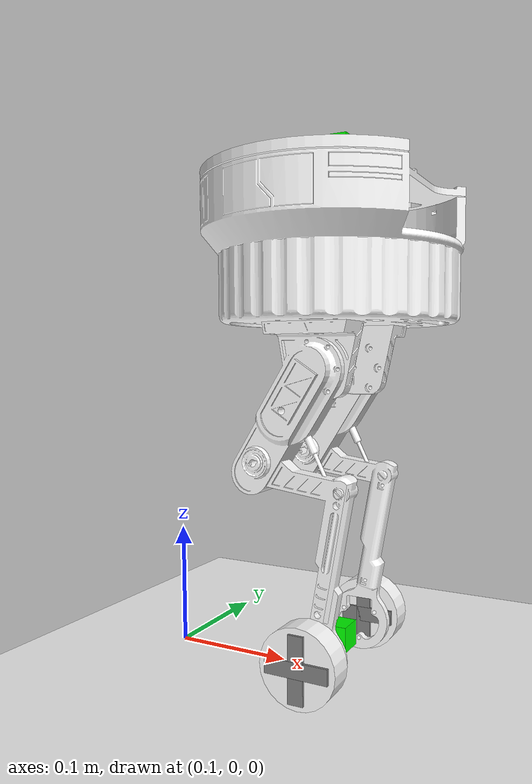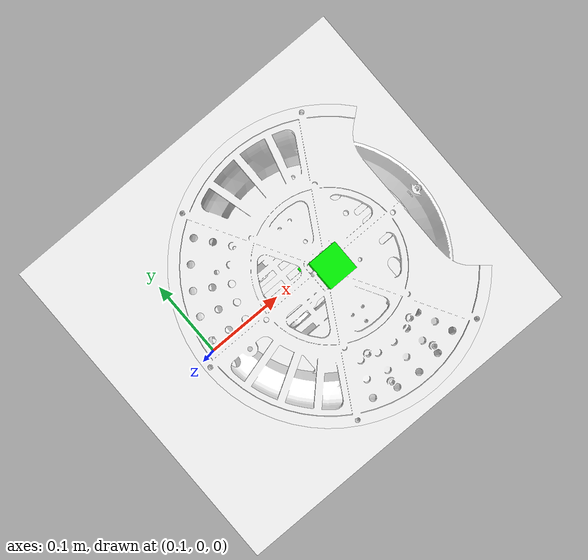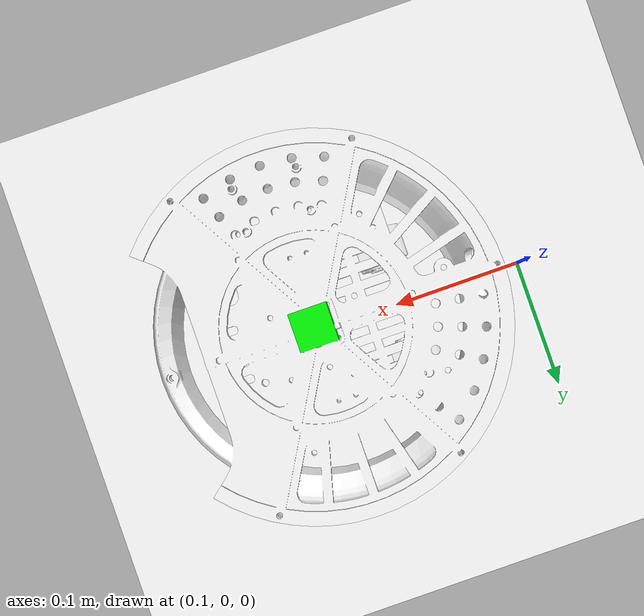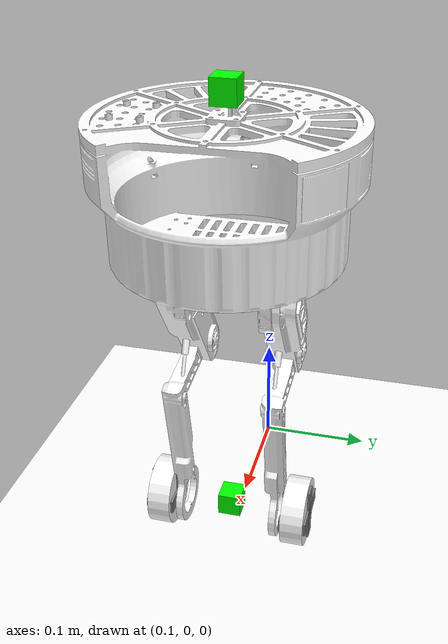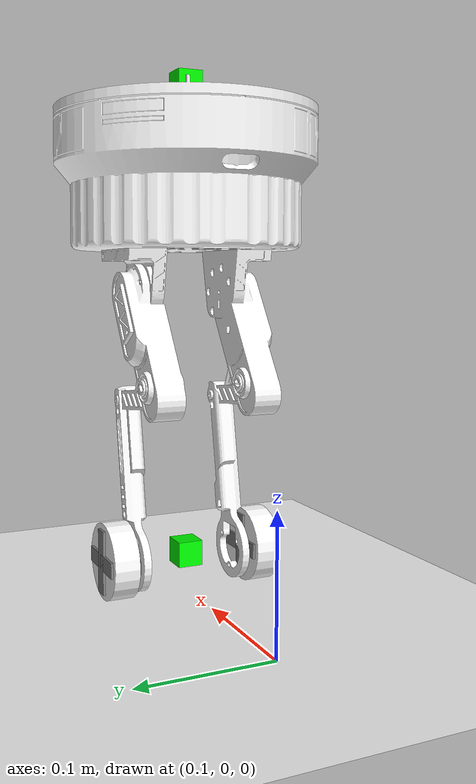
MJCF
<mujoco>
  <!-- This file specifies things in degrees. The code/simulator uses radians -->
  <compiler autolimits="true" angle="degree"/>

  <asset>
    <texture name="grid" type="2d" builtin="checker" width="512" height="512" rgb1=".1 .2 .3" rgb2=".2 .3 .4"/>
    <material name="grid" texture="grid" texrepeat="1 1" texuniform="true" reflectance=".05"/>
    <mesh name="chasis" scale=".01 .006 .0015"
      vertex=" 9   2   0
              -10  10  10
               9  -2   0
               10  3  -10
               10 -3  -10
              -8   10 -10
              -10 -10  10
              -8  -10 -10
              -5   0   20"/>
  </asset>

  <asset>
    <mesh file="Basis_m.stl"/>
  </asset>

  <visual>
    <headlight ambient="0.5 0.5 0.5" />

  </visual>

  <option timestep="0.001" integrator="RK4"/>

  <default>
    <geom rgba="1. 1. 1. 1."/>
    <default class="wheel">
      <geom type="cylinder" size=".03 .01"/>
    </default>
    <default class="decor">
      <site type="box"/>
    </default>
  </default>

  <worldbody>
    <geom type="plane" size="50 50 .01" material="grid"/>
    <body name="pendulum" pos="0.25 0 .03" euler="0 0 0">

        <freejoint/>

        <site name="wheelbase" pos="0 0 0"/>
        <geom name="wheelbase_viz" type="box" pos="0 0 0" size=".01 .01 .01" mass="0.001" rgba="0.0 1.0 0.0 1.0"/>

        <site name="accel_site" pos="0 0 0.37"/>
        <geom name="accel" type="box" pos="0 0 0.37" size=".01 .01 .01" mass="0" rgba="0.0 1.0 0.0 1.0"/>

        <body name="leftwheel" pos=".0 .06 0" zaxis="0 1 0">
            <joint name="left"/>
            <geom class="wheel" mass="0.150"/>
            <site class="decor" size=".006 .025 .012"/>
            <site class="decor" size=".025 .006 .012"/>
        </body>

        <body name="rightwheel" pos=".0 -.06 0" zaxis="0 1 0">
            <joint name="right"/>
            <site name="torque_sensor_mnt" pos="0 0 0"/>
            <geom class="wheel" mass="0.150"/>
            <site class="decor" size=".006 .025 .012"/>
            <site class="decor" size=".025 .006 .012"/>
        </body>

        <body name="beam" pos="0 0 0.25">
            <geom type="mesh" mesh="Basis_m" pos="0 0 0.033" size="0.01 0.01 0.01" euler="90 90 0" mass="0.810"/>
        </body>

    </body>
  </worldbody>

  <actuator>
    <motor name="forward_left" joint="left" gear="1"/>
    <motor name="forward_right" joint="right" gear="1"/>
  </actuator>

  <sensor>
    <accelerometer name="accelerometer" site="accel_site" noise="0.0"/>
    <gyro name="gyro" site="accel_site" noise="0.0"/>
    <framequat name="angle_sensor" objtype="site" objname="wheelbase"/>
    <framepos name="base_position" objtype="site" objname="wheelbase"/>
    <framelinvel name="base_velocity" objtype="site" objname="wheelbase"/>
    <frameangvel name="base_ang_velocity" objtype="site" objname="wheelbase"/>
    <torque name="wheel_torque" site="torque_sensor_mnt"/>
    <jointvel name="wheel_vel" joint="right"/>
    <jointpos name="wheel_pos" joint="right"/>
  </sensor>
</mujoco>
